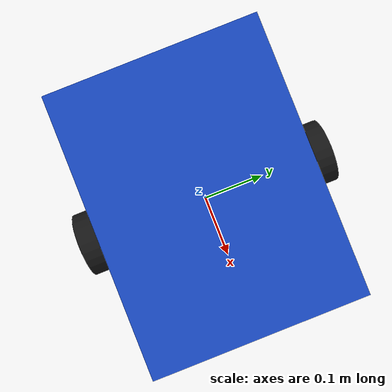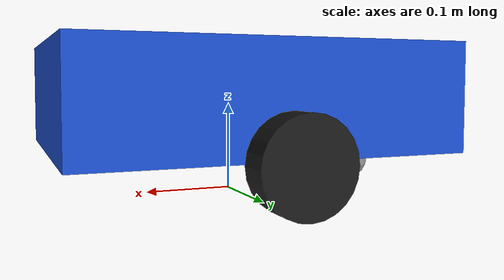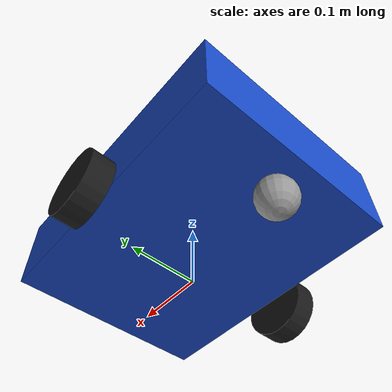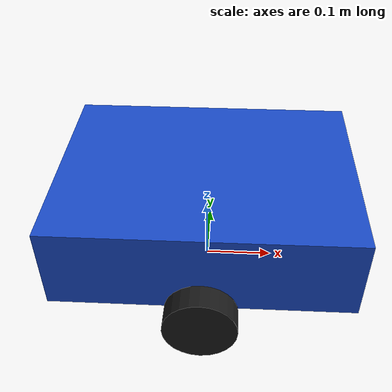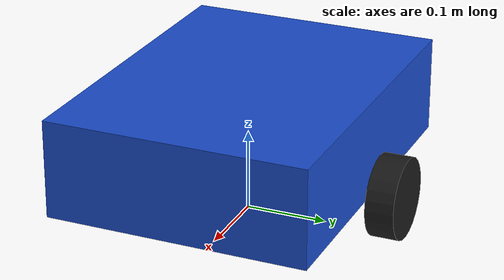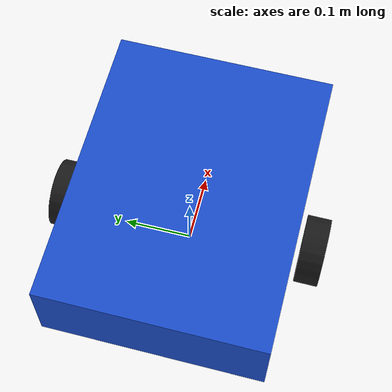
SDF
<?xml version="1.0"?>
<sdf version="1.9">
  <model name="mobile_bot">
    <self_collide>false</self_collide>
    <static>false</static>

    <link name="base_link">
      <pose>0 0 0.11 0 0 0</pose>

      <inertial>
        <mass>8.0</mass>
        <inertia>
          <ixx>0.10</ixx>
          <ixy>0.0</ixy>
          <ixz>0.0</ixz>
          <iyy>0.15</iyy>
          <iyz>0.0</iyz>
          <izz>0.20</izz>
        </inertia>
      </inertial>

      <collision name="base_collision">
        <geometry>
          <box>
            <size>0.42 0.32 0.12</size>
          </box>
        </geometry>
      </collision>

      <visual name="base_visual">
        <geometry>
          <box>
            <size>0.42 0.32 0.12</size>
          </box>
        </geometry>
        <material>
          <ambient>0.1 0.3 0.8 1</ambient>
          <diffuse>0.1 0.3 0.8 1</diffuse>
        </material>
      </visual>
    </link>

    <link name="left_wheel_link">
      <pose>0 0.185 0.05 0 0 0</pose>

      <inertial>
        <mass>0.5</mass>
        <inertia>
          <ixx>0.001</ixx>
          <ixy>0.0</ixy>
          <ixz>0.0</ixz>
          <iyy>0.001</iyy>
          <iyz>0.0</iyz>
          <izz>0.001</izz>
        </inertia>
      </inertial>

      <collision name="left_wheel_collision">
        <pose>0 0 0 1.57079632679 0 0</pose>
        <geometry>
          <cylinder>
            <radius>0.05</radius>
            <length>0.035</length>
          </cylinder>
        </geometry>
        <surface>
          <friction>
            <ode>
              <mu>1.5</mu>
              <mu2>1.5</mu2>
            </ode>
          </friction>
        </surface>
      </collision>

      <visual name="left_wheel_visual">
        <pose>0 0 0 1.57079632679 0 0</pose>
        <geometry>
          <cylinder>
            <radius>0.05</radius>
            <length>0.035</length>
          </cylinder>
        </geometry>
        <material>
          <ambient>0.1 0.1 0.1 1</ambient>
          <diffuse>0.1 0.1 0.1 1</diffuse>
        </material>
      </visual>
    </link>

    <joint name="left_wheel_joint" type="revolute">
      <parent>base_link</parent>
      <child>left_wheel_link</child>
      <axis>
        <xyz>0 1 0</xyz>
        <limit>
          <effort>20</effort>
          <velocity>50</velocity>
        </limit>
      </axis>
    </joint>

    <link name="right_wheel_link">
      <pose>0 -0.185 0.05 0 0 0</pose>

      <inertial>
        <mass>0.5</mass>
        <inertia>
          <ixx>0.001</ixx>
          <ixy>0.0</ixy>
          <ixz>0.0</ixz>
          <iyy>0.001</iyy>
          <iyz>0.0</iyz>
          <izz>0.001</izz>
        </inertia>
      </inertial>

      <collision name="right_wheel_collision">
        <pose>0 0 0 1.57079632679 0 0</pose>
        <geometry>
          <cylinder>
            <radius>0.05</radius>
            <length>0.035</length>
          </cylinder>
        </geometry>
        <surface>
          <friction>
            <ode>
              <mu>1.5</mu>
              <mu2>1.5</mu2>
            </ode>
          </friction>
        </surface>
      </collision>

      <visual name="right_wheel_visual">
        <pose>0 0 0 1.57079632679 0 0</pose>
        <geometry>
          <cylinder>
            <radius>0.05</radius>
            <length>0.035</length>
          </cylinder>
        </geometry>
        <material>
          <ambient>0.1 0.1 0.1 1</ambient>
          <diffuse>0.1 0.1 0.1 1</diffuse>
        </material>
      </visual>
    </link>

    <joint name="right_wheel_joint" type="revolute">
      <parent>base_link</parent>
      <child>right_wheel_link</child>
      <axis>
        <xyz>0 1 0</xyz>
        <limit>
          <effort>20</effort>
          <velocity>50</velocity>
        </limit>
      </axis>
    </joint>

    <link name="caster_link">
      <pose>-0.16 0 0.03 0 0 0</pose>
      <collision name="caster_collision">
        <geometry>
          <sphere>
            <radius>0.03</radius>
          </sphere>
        </geometry>
      </collision>
      <visual name="caster_visual">
        <geometry>
          <sphere>
            <radius>0.03</radius>
          </sphere>
        </geometry>
        <material>
          <ambient>0.6 0.6 0.6 1</ambient>
          <diffuse>0.6 0.6 0.6 1</diffuse>
        </material>
      </visual>
    </link>

    <joint name="caster_joint" type="fixed">
      <parent>base_link</parent>
      <child>caster_link</child>
    </joint>

    <plugin filename="gz-sim-diff-drive-system" name="gz::sim::systems::DiffDrive">
      <left_joint>left_wheel_joint</left_joint>
      <right_joint>right_wheel_joint</right_joint>
      <wheel_separation>0.37</wheel_separation>
      <wheel_radius>0.05</wheel_radius>

      <topic>cmd_vel</topic>
      <odom_topic>odom</odom_topic>
      <frame_id>odom</frame_id>
      <child_frame_id>base_link</child_frame_id>
      <tf_topic>tf</tf_topic>
      <odom_publish_frequency>30</odom_publish_frequency>
    </plugin>

    <plugin filename="gz-sim-joint-state-publisher-system"
            name="gz::sim::systems::JointStatePublisher">
      <topic>joint_states</topic>
      <joint_name>left_wheel_joint</joint_name>
      <joint_name>right_wheel_joint</joint_name>
    </plugin>

  </model>
</sdf>
